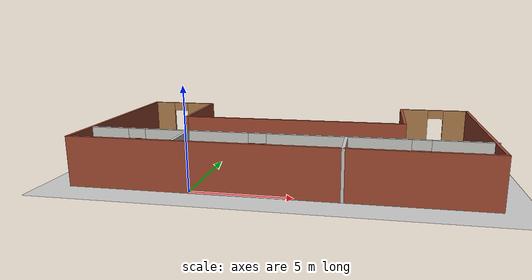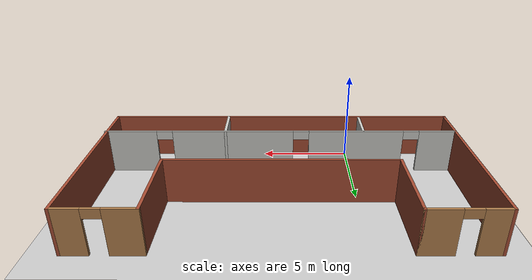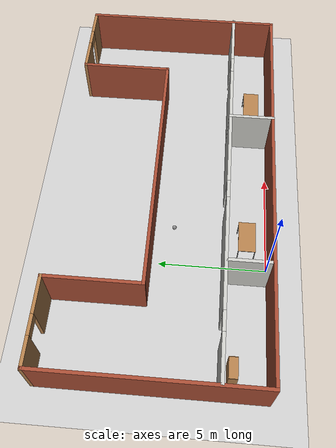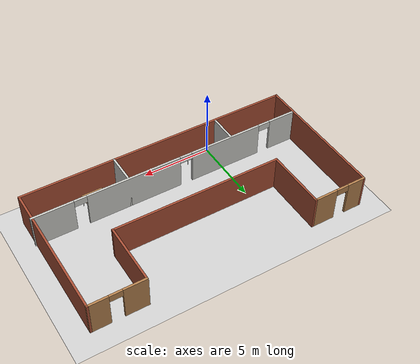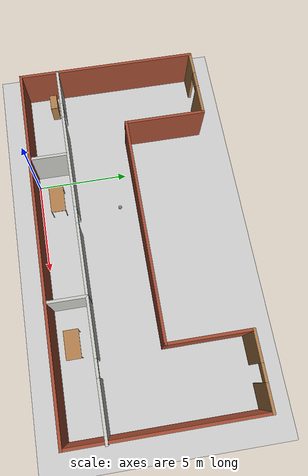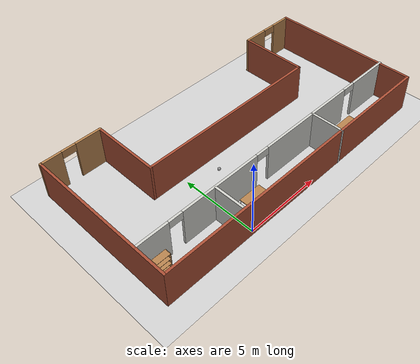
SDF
<sdf version="1.6">
 <world name="default">
  <light name="sun" type="directional">
   <pose>0 0 10 0 -0 0</pose>
   <diffuse>0.8 0.8 0.8 1</diffuse>
   <specular>0.2 0.2 0.2 1</specular>
   <attenuation>
    <range>1000</range>
    <constant>0.9</constant>
    <linear>0.01</linear>
    <quadratic>0.001</quadratic>
   </attenuation>
   <direction>-0.5 0.1 -0.9</direction>
  </light>
  <model name="ground_plane">
   <static>1</static>
   <link name="link">
    <collision name="collision">
     <geometry><plane><normal>0 0 1</normal><size>100 100</size></plane></geometry>
     <surface>
      <contact><collide_bitmask>65535</collide_bitmask></contact>
      <friction><ode><mu>100</mu><mu2>50</mu2></ode></friction>
     </surface>
    </collision>
    <visual name="visual">
     <cast_shadows>0</cast_shadows>
     <geometry><plane><normal>0 0 1</normal><size>100 100</size></plane></geometry>
     <material>
      <script><uri>file://media/materials/scripts/gazebo.material</uri><name>Gazebo/Grey</name></script>
     </material>
    </visual>
   </link>
  </model>
  <gravity>0 0 -9.8</gravity>
  <magnetic_field>6e-06 2.3e-05 -4.2e-05</magnetic_field>
  <atmosphere type="adiabatic"/>
  <physics name="default_physics" default="0" type="ode">
   <max_step_size>0.001</max_step_size>
   <real_time_factor>1</real_time_factor>
   <real_time_update_rate>1000</real_time_update_rate>
  </physics>
  <scene><ambient>0.4 0.4 0.4 1</ambient><background>0.7 0.7 0.7 1</background><shadows>1</shadows></scene>
  <spherical_coordinates>
   <surface_model>EARTH_WGS84</surface_model>
   <latitude_deg>0</latitude_deg>
   <longitude_deg>0</longitude_deg>
   <elevation>0</elevation>
   <heading_deg>0</heading_deg>
  </spherical_coordinates>
  <model name="House">
   <pose>4.04107 4.8221 0 0 -0 0</pose>
   <link name="Wall_1">
    <collision name="Wall_1_Collision">
     <geometry><box><size>10 0.15 2.5</size></box></geometry>
     <pose>0 0 1.25 0 -0 0</pose>
    </collision>
    <visual name="Wall_1_Visual">
     <pose>0 0 1.25 0 -0 0</pose>
     <geometry><box><size>10 0.15 2.5</size></box></geometry>
     <material>
      <script><uri>file://media/materials/scripts/gazebo.material</uri><name>Gazebo/Bricks</name></script>
      <ambient>1 1 1 1</ambient>
     </material>
     <meta><layer>0</layer></meta>
    </visual>
    <pose>-9.96485 0.006024 0 0 0 -1.5708</pose>
   </link>
   <link name="Wall_11">
    <pose>7.96015 4.93102 0 0 -0 3.14159</pose>
    <visual name="Wall_11_Visual_0">
     <pose>-1.28029 0 1.25 0 -0 0</pose>
     <geometry><box><size>1.43942 0.15 2.5</size></box></geometry>
     <material>
      <script><uri>file://media/materials/scripts/gazebo.material</uri><name>Gazebo/Wood</name></script>
      <ambient>1 1 1 1</ambient>
     </material>
     <meta><layer>0</layer></meta>
    </visual>
    <collision name="Wall_11_Collision_0">
     <geometry><box><size>1.43942 0.15 2.5</size></box></geometry>
     <pose>-1.28029 0 1.25 0 -0 0</pose>
    </collision>
    <visual name="Wall_11_Visual_1">
     <pose>1.16971 0 1.25 0 -0 0</pose>
     <geometry><box><size>1.66058 0.15 2.5</size></box></geometry>
     <material>
      <script><uri>file://media/materials/scripts/gazebo.material</uri><name>Gazebo/Wood</name></script>
      <ambient>1 1 1 1</ambient>
     </material>
     <meta><layer>0</layer></meta>
    </visual>
    <collision name="Wall_11_Collision_1">
     <geometry><box><size>1.66058 0.15 2.5</size></box></geometry>
     <pose>1.16971 0 1.25 0 -0 0</pose>
    </collision>
    <visual name="Wall_11_Visual_2">
     <pose>-0.110578 0 2.25 0 -0 0</pose>
     <geometry><box><size>0.9 0.15 0.5</size></box></geometry>
     <material>
      <script><uri>file://media/materials/scripts/gazebo.material</uri><name>Gazebo/Wood</name></script>
      <ambient>1 1 1 1</ambient>
     </material>
     <meta><layer>0</layer></meta>
    </visual>
    <collision name="Wall_11_Collision_2">
     <geometry><box><size>0.9 0.15 0.5</size></box></geometry>
     <pose>-0.110578 0 2.25 0 -0 0</pose>
    </collision>
   </link>
   <link name="Wall_12">
    <collision name="Wall_12_Collision">
     <geometry><box><size>4.5 0.15 2.5</size></box></geometry>
     <pose>0 0 1.25 0 -0 0</pose>
    </collision>
    <visual name="Wall_12_Visual">
     <pose>0 0 1.25 0 -0 0</pose>
     <geometry><box><size>4.5 0.15 2.5</size></box></geometry>
     <material>
      <script><uri>file://media/materials/scripts/gazebo.material</uri><name>Gazebo/Bricks</name></script>
      <ambient>1 1 1 1</ambient>
     </material>
     <meta><layer>0</layer></meta>
    </visual>
    <pose>6.03515 2.75602 0 0 0 -1.5708</pose>
   </link>
   <link name="Wall_13">
    <collision name="Wall_13_Collision">
     <geometry><box><size>12.3 0.15 2.5</size></box></geometry>
     <pose>0 0 1.25 0 -0 0</pose>
    </collision>
    <visual name="Wall_13_Visual">
     <pose>0 0 1.25 0 -0 0</pose>
     <geometry><box><size>12.3 0.15 2.5</size></box></geometry>
     <material>
      <script><uri>file://media/materials/scripts/gazebo.material</uri><name>Gazebo/Bricks</name></script>
      <ambient>1 1 1 1</ambient>
     </material>
     <meta><layer>0</layer></meta>
    </visual>
    <pose>-0.039852 0.581023 0 0 -0 3.14159</pose>
   </link>
   <link name="Wall_16">
    <pose>0.039852 -2.83102 0 0 -0 0</pose>
    <visual name="Wall_16_Visual_0">
     <pose>-8.96424 0 1.25 0 -0 0</pose>
     <geometry><box><size>2.07152 0.15 2.5</size></box></geometry>
     <material>
      <script><uri>file://media/materials/scripts/gazebo.material</uri><name>Gazebo/CeilingTiled</name></script>
      <ambient>1 1 1 1</ambient>
     </material>
     <meta><layer>0</layer></meta>
    </visual>
    <collision name="Wall_16_Collision_0">
     <geometry><box><size>2.07152 0.15 2.5</size></box></geometry>
     <pose>-8.96424 0 1.25 0 -0 0</pose>
    </collision>
    <visual name="Wall_16_Visual_1">
     <pose>-4.34023 0 1.25 0 -0 0</pose>
     <geometry><box><size>5.37651 0.15 2.5</size></box></geometry>
     <material>
      <script><uri>file://media/materials/scripts/gazebo.material</uri><name>Gazebo/CeilingTiled</name></script>
      <ambient>1 1 1 1</ambient>
     </material>
     <meta><layer>0</layer></meta>
    </visual>
    <collision name="Wall_16_Collision_1">
     <geometry><box><size>5.37651 0.15 2.5</size></box></geometry>
     <pose>-4.34023 0 1.25 0 -0 0</pose>
    </collision>
    <visual name="Wall_16_Visual_2">
     <pose>2.68674 0 1.25 0 -0 0</pose>
     <geometry><box><size>6.87742 0.15 2.5</size></box></geometry>
     <material>
      <script><uri>file://media/materials/scripts/gazebo.material</uri><name>Gazebo/CeilingTiled</name></script>
      <ambient>1 1 1 1</ambient>
     </material>
     <meta><layer>0</layer></meta>
    </visual>
    <collision name="Wall_16_Collision_2">
     <geometry><box><size>6.87742 0.15 2.5</size></box></geometry>
     <pose>2.68674 0 1.25 0 -0 0</pose>
    </collision>
    <visual name="Wall_16_Visual_3">
     <pose>8.51273 0 1.25 0 -0 0</pose>
     <geometry><box><size>2.97455 0.15 2.5</size></box></geometry>
     <material>
      <script><uri>file://media/materials/scripts/gazebo.material</uri><name>Gazebo/CeilingTiled</name></script>
      <ambient>1 1 1 1</ambient>
     </material>
     <meta><layer>0</layer></meta>
    </visual>
    <collision name="Wall_16_Collision_3">
     <geometry><box><size>2.97455 0.15 2.5</size></box></geometry>
     <pose>8.51273 0 1.25 0 -0 0</pose>
    </collision>
    <visual name="Wall_16_Visual_4">
     <pose>-7.47848 0 2.25 0 -0 0</pose>
     <geometry><box><size>0.9 0.15 0.5</size></box></geometry>
     <material>
      <script><uri>file://media/materials/scripts/gazebo.material</uri><name>Gazebo/CeilingTiled</name></script>
      <ambient>1 1 1 1</ambient>
     </material>
     <meta><layer>0</layer></meta>
    </visual>
    <collision name="Wall_16_Collision_4">
     <geometry><box><size>0.9 0.15 0.5</size></box></geometry>
     <pose>-7.47848 0 2.25 0 -0 0</pose>
    </collision>
    <visual name="Wall_16_Visual_5">
     <pose>-1.20197 0 2.25 0 -0 0</pose>
     <geometry><box><size>0.9 0.15 0.5</size></box></geometry>
     <material>
      <script><uri>file://media/materials/scripts/gazebo.material</uri><name>Gazebo/CeilingTiled</name></script>
      <ambient>1 1 1 1</ambient>
     </material>
     <meta><layer>0</layer></meta>
    </visual>
    <collision name="Wall_16_Collision_5">
     <geometry><box><size>0.9 0.15 0.5</size></box></geometry>
     <pose>-1.20197 0 2.25 0 -0 0</pose>
    </collision>
    <visual name="Wall_16_Visual_6">
     <pose>6.57545 0 2.25 0 -0 0</pose>
     <geometry><box><size>0.9 0.15 0.5</size></box></geometry>
     <material>
      <script><uri>file://media/materials/scripts/gazebo.material</uri><name>Gazebo/CeilingTiled</name></script>
      <ambient>1 1 1 1</ambient>
     </material>
     <meta><layer>0</layer></meta>
    </visual>
    <collision name="Wall_16_Collision_6">
     <geometry><box><size>0.9 0.15 0.5</size></box></geometry>
     <pose>6.57545 0 2.25 0 -0 0</pose>
    </collision>
   </link>
   <link name="Wall_20">
    <collision name="Wall_20_Collision">
     <geometry><box><size>2.25 0.15 2.5</size></box></geometry>
     <pose>0 0 1.25 0 -0 0</pose>
    </collision>
    <visual name="Wall_20_Visual">
     <pose>0 0 1.25 0 -0 0</pose>
     <geometry><box><size>2.25 0.15 2.5</size></box></geometry>
     <material>
      <script><uri>file://media/materials/scripts/gazebo.material</uri><name>Gazebo/CeilingTiled</name></script>
      <ambient>1 1 1 1</ambient>
     </material>
     <meta><layer>0</layer></meta>
    </visual>
    <pose>3.14544 -3.88102 0 0 0 -1.5708</pose>
   </link>
   <link name="Wall_25">
    <collision name="Wall_25_Collision">
     <geometry><box><size>2 0.15 2.5</size></box></geometry>
     <pose>0 0 1.25 0 -0 0</pose>
    </collision>
    <visual name="Wall_25_Visual">
     <pose>0 0 1.25 0 -0 0</pose>
     <geometry><box><size>2 0.15 2.5</size></box></geometry>
     <material>
      <script><uri>file://media/materials/scripts/gazebo.material</uri><name>Gazebo/CeilingTiled</name></script>
      <ambient>1 1 1 1</ambient>
     </material>
     <meta><layer>0</layer></meta>
    </visual>
    <pose>-4.72837 -3.8352 0 0 0 -1.5708</pose>
   </link>
   <link name="Wall_4">
    <collision name="Wall_4_Collision">
     <geometry><box><size>20 0.15 2.5</size></box></geometry>
     <pose>0 0 1.25 0 -0 0</pose>
    </collision>
    <visual name="Wall_4_Visual">
     <pose>0 0 1.25 0 -0 0</pose>
     <geometry><box><size>20 0.15 2.5</size></box></geometry>
     <material>
      <script><uri>file://media/materials/scripts/gazebo.material</uri><name>Gazebo/Bricks</name></script>
      <ambient>1 1 1 1</ambient>
     </material>
     <meta><layer>0</layer></meta>
    </visual>
    <pose>-0.039852 -4.91898 0 0 -0 0</pose>
   </link>
   <link name="Wall_6">
    <collision name="Wall_6_Collision">
     <geometry><box><size>10 0.15 2.5</size></box></geometry>
     <pose>0 0 1.25 0 -0 0</pose>
    </collision>
    <visual name="Wall_6_Visual">
     <pose>0 0 1.25 0 -0 0</pose>
     <geometry><box><size>10 0.15 2.5</size></box></geometry>
     <material>
      <script><uri>file://media/materials/scripts/gazebo.material</uri><name>Gazebo/Bricks</name></script>
      <ambient>1 1 1 1</ambient>
     </material>
     <meta><layer>0</layer></meta>
    </visual>
    <pose>9.88515 0.006024 0 0 -0 1.5708</pose>
   </link>
   <link name="Wall_8">
    <pose>-8.03985 4.93102 0 0 -0 0</pose>
    <visual name="Wall_8_Visual_0">
     <pose>-1.32236 0 1.25 0 -0 0</pose>
     <geometry><box><size>1.35529 0.15 2.5</size></box></geometry>
     <material>
      <script><uri>file://media/materials/scripts/gazebo.material</uri><name>Gazebo/Wood</name></script>
      <ambient>1 1 1 1</ambient>
     </material>
     <meta><layer>0</layer></meta>
    </visual>
    <collision name="Wall_8_Collision_0">
     <geometry><box><size>1.35529 0.15 2.5</size></box></geometry>
     <pose>-1.32236 0 1.25 0 -0 0</pose>
    </collision>
    <visual name="Wall_8_Visual_1">
     <pose>1.12764 0 1.25 0 -0 0</pose>
     <geometry><box><size>1.74471 0.15 2.5</size></box></geometry>
     <material>
      <script><uri>file://media/materials/scripts/gazebo.material</uri><name>Gazebo/Wood</name></script>
      <ambient>1 1 1 1</ambient>
     </material>
     <meta><layer>0</layer></meta>
    </visual>
    <collision name="Wall_8_Collision_1">
     <geometry><box><size>1.74471 0.15 2.5</size></box></geometry>
     <pose>1.12764 0 1.25 0 -0 0</pose>
    </collision>
    <visual name="Wall_8_Visual_2">
     <pose>-0.194714 0 2.25 0 -0 0</pose>
     <geometry><box><size>0.9 0.15 0.5</size></box></geometry>
     <material>
      <script><uri>file://media/materials/scripts/gazebo.material</uri><name>Gazebo/Wood</name></script>
      <ambient>1 1 1 1</ambient>
     </material>
     <meta><layer>0</layer></meta>
    </visual>
    <collision name="Wall_8_Collision_2">
     <geometry><box><size>0.9 0.15 0.5</size></box></geometry>
     <pose>-0.194714 0 2.25 0 -0 0</pose>
    </collision>
   </link>
   <link name="Wall_9">
    <collision name="Wall_9_Collision">
     <geometry><box><size>4.5 0.15 2.5</size></box></geometry>
     <pose>0 0 1.25 0 -0 0</pose>
    </collision>
    <visual name="Wall_9_Visual">
     <pose>0 0 1.25 0 -0 0</pose>
     <geometry><box><size>4.5 0.15 2.5</size></box></geometry>
     <material>
      <script><uri>file://media/materials/scripts/gazebo.material</uri><name>Gazebo/Bricks</name></script>
      <ambient>1 1 1 1</ambient>
     </material>
     <meta><layer>0</layer></meta>
    </visual>
    <pose>-6.11485 2.75602 0 0 0 -1.5708</pose>
   </link>
   <static>1</static>
  </model>
  <model name="bookshelf">
   <static>1</static>
   <link name="link">
    <inertial><mass>1</mass></inertial>
    <collision name="back">
     <pose>0 0.005 0.6 0 -0 0</pose>
     <geometry><box><size>0.9 0.01 1.2</size></box></geometry>
    </collision>
    <visual name="visual1">
     <pose>0 0.005 0.6 0 -0 0</pose>
     <geometry><box><size>0.9 0.01 1.2</size></box></geometry>
     <material>
      <script><uri>file://media/materials/scripts/gazebo.material</uri><name>Gazebo/Wood</name></script>
     </material>
    </visual>
    <collision name="left_side">
     <pose>0.45 -0.195 0.6 0 -0 0</pose>
     <geometry><box><size>0.02 0.4 1.2</size></box></geometry>
    </collision>
    <visual name="visual2">
     <pose>0.45 -0.195 0.6 0 -0 0</pose>
     <geometry><box><size>0.02 0.4 1.2</size></box></geometry>
     <material>
      <script><uri>file://media/materials/scripts/gazebo.material</uri><name>Gazebo/Wood</name></script>
     </material>
    </visual>
    <collision name="right_side">
     <pose>-0.45 -0.195 0.6 0 -0 0</pose>
     <geometry><box><size>0.02 0.4 1.2</size></box></geometry>
    </collision>
    <visual name="visual3">
     <pose>-0.45 -0.195 0.6 0 -0 0</pose>
     <geometry><box><size>0.02 0.4 1.2</size></box></geometry>
     <material>
      <script><uri>file://media/materials/scripts/gazebo.material</uri><name>Gazebo/Wood</name></script>
     </material>
    </visual>
    <collision name="bottom">
     <pose>0 -0.195 0.03 0 -0 0</pose>
     <geometry><box><size>0.88 0.4 0.06</size></box></geometry>
    </collision>
    <visual name="visual4">
     <pose>0 -0.195 0.03 0 -0 0</pose>
     <geometry><box><size>0.88 0.4 0.06</size></box></geometry>
     <material>
      <script><uri>file://media/materials/scripts/gazebo.material</uri><name>Gazebo/Wood</name></script>
     </material>
    </visual>
    <collision name="top">
     <pose>0 -0.195 1.19 0 -0 0</pose>
     <geometry><box><size>0.88 0.4 0.02</size></box></geometry>
    </collision>
    <visual name="visual5">
     <pose>0 -0.195 1.19 0 -0 0</pose>
     <geometry><box><size>0.88 0.4 0.02</size></box></geometry>
     <material>
      <script><uri>file://media/materials/scripts/gazebo.material</uri><name>Gazebo/Wood</name></script>
     </material>
    </visual>
    <collision name="low_shelf">
     <pose>0 -0.195 0.43 0 -0 0</pose>
     <geometry><box><size>0.88 0.4 0.02</size></box></geometry>
    </collision>
    <visual name="visual6">
     <pose>0 -0.195 0.43 0 -0 0</pose>
     <geometry><box><size>0.88 0.4 0.02</size></box></geometry>
     <material>
      <script><uri>file://media/materials/scripts/gazebo.material</uri><name>Gazebo/Wood</name></script>
     </material>
    </visual>
    <collision name="high_shelf">
     <pose>0 -0.195 0.8 0 -0 0</pose>
     <geometry><box><size>0.88 0.4 0.02</size></box></geometry>
    </collision>
    <visual name="visual7">
     <pose>0 -0.195 0.8 0 -0 0</pose>
     <geometry><box><size>0.88 0.4 0.02</size></box></geometry>
     <material>
      <script><uri>file://media/materials/scripts/gazebo.material</uri><name>Gazebo/Wood</name></script>
     </material>
    </visual>
   </link>
   <pose>-4.87645 1.67076 0 0 -0 0</pose>
  </model>
  <model name="table">
   <static>1</static>
   <link name="link">
    <collision name="surface">
     <pose>0 0 1 0 -0 0</pose>
     <geometry><box><size>1.5 0.8 0.03</size></box></geometry>
     <surface><friction><ode><mu>0.6</mu><mu2>0.6</mu2></ode></friction></surface>
    </collision>
    <visual name="visual1">
     <pose>0 0 1 0 -0 0</pose>
     <geometry><box><size>1.5 0.8 0.03</size></box></geometry>
     <material>
      <script><uri>file://media/materials/scripts/gazebo.material</uri><name>Gazebo/Wood</name></script>
     </material>
    </visual>
    <collision name="front_left_leg">
     <pose>0.68 0.38 0.5 0 -0 0</pose>
     <geometry><cylinder><radius>0.02</radius><length>1</length></cylinder></geometry>
    </collision>
    <visual name="front_left_leg">
     <pose>0.68 0.38 0.5 0 -0 0</pose>
     <geometry><cylinder><radius>0.02</radius><length>1</length></cylinder></geometry>
     <material>
      <script><uri>file://media/materials/scripts/gazebo.material</uri><name>Gazebo/Grey</name></script>
     </material>
    </visual>
    <collision name="front_right_leg">
     <pose>0.68 -0.38 0.5 0 -0 0</pose>
     <geometry><cylinder><radius>0.02</radius><length>1</length></cylinder></geometry>
    </collision>
    <visual name="front_right_leg">
     <pose>0.68 -0.38 0.5 0 -0 0</pose>
     <geometry><cylinder><radius>0.02</radius><length>1</length></cylinder></geometry>
     <material>
      <script><uri>file://media/materials/scripts/gazebo.material</uri><name>Gazebo/Grey</name></script>
     </material>
    </visual>
    <collision name="back_right_leg">
     <pose>-0.68 -0.38 0.5 0 -0 0</pose>
     <geometry><cylinder><radius>0.02</radius><length>1</length></cylinder></geometry>
    </collision>
    <visual name="back_right_leg">
     <pose>-0.68 -0.38 0.5 0 -0 0</pose>
     <geometry><cylinder><radius>0.02</radius><length>1</length></cylinder></geometry>
     <material>
      <script><uri>file://media/materials/scripts/gazebo.material</uri><name>Gazebo/Grey</name></script>
     </material>
    </visual>
    <collision name="back_left_leg">
     <pose>-0.68 0.38 0.5 0 -0 0</pose>
     <geometry><cylinder><radius>0.02</radius><length>1</length></cylinder></geometry>
    </collision>
    <visual name="back_left_leg">
     <pose>-0.68 0.38 0.5 0 -0 0</pose>
     <geometry><cylinder><radius>0.02</radius><length>1</length></cylinder></geometry>
     <material>
      <script><uri>file://media/materials/scripts/gazebo.material</uri><name>Gazebo/Grey</name></script>
     </material>
    </visual>
   </link>
   <pose>1.21974 0.964337 0 0 -0 0</pose>
  </model>
  <model name="table_0">
   <static>1</static>
   <link name="link">
    <collision name="surface">
     <pose>0 0 1 0 -0 0</pose>
     <geometry><box><size>1.5 0.8 0.03</size></box></geometry>
     <surface><friction><ode><mu>0.6</mu><mu2>0.6</mu2></ode></friction></surface>
    </collision>
    <visual name="visual1">
     <pose>0 0 1 0 -0 0</pose>
     <geometry><box><size>1.5 0.8 0.03</size></box></geometry>
     <material>
      <script><uri>file://media/materials/scripts/gazebo.material</uri><name>Gazebo/Wood</name></script>
     </material>
    </visual>
    <collision name="front_left_leg">
     <pose>0.68 0.38 0.5 0 -0 0</pose>
     <geometry><cylinder><radius>0.02</radius><length>1</length></cylinder></geometry>
    </collision>
    <visual name="front_left_leg">
     <pose>0.68 0.38 0.5 0 -0 0</pose>
     <geometry><cylinder><radius>0.02</radius><length>1</length></cylinder></geometry>
     <material>
      <script><uri>file://media/materials/scripts/gazebo.material</uri><name>Gazebo/Grey</name></script>
     </material>
    </visual>
    <collision name="front_right_leg">
     <pose>0.68 -0.38 0.5 0 -0 0</pose>
     <geometry><cylinder><radius>0.02</radius><length>1</length></cylinder></geometry>
    </collision>
    <visual name="front_right_leg">
     <pose>0.68 -0.38 0.5 0 -0 0</pose>
     <geometry><cylinder><radius>0.02</radius><length>1</length></cylinder></geometry>
     <material>
      <script><uri>file://media/materials/scripts/gazebo.material</uri><name>Gazebo/Grey</name></script>
     </material>
    </visual>
    <collision name="back_right_leg">
     <pose>-0.68 -0.38 0.5 0 -0 0</pose>
     <geometry><cylinder><radius>0.02</radius><length>1</length></cylinder></geometry>
    </collision>
    <visual name="back_right_leg">
     <pose>-0.68 -0.38 0.5 0 -0 0</pose>
     <geometry><cylinder><radius>0.02</radius><length>1</length></cylinder></geometry>
     <material>
      <script><uri>file://media/materials/scripts/gazebo.material</uri><name>Gazebo/Grey</name></script>
     </material>
    </visual>
    <collision name="back_left_leg">
     <pose>-0.68 0.38 0.5 0 -0 0</pose>
     <geometry><cylinder><radius>0.02</radius><length>1</length></cylinder></geometry>
    </collision>
    <visual name="back_left_leg">
     <pose>-0.68 0.38 0.5 0 -0 0</pose>
     <geometry><cylinder><radius>0.02</radius><length>1</length></cylinder></geometry>
     <material>
      <script><uri>file://media/materials/scripts/gazebo.material</uri><name>Gazebo/Grey</name></script>
     </material>
    </visual>
   </link>
   <pose>9.23977 0.83271 0 0 -0 0</pose>
  </model>
  <model name="my_ball">
   <link name="link_1">
    <inertial>
     <mass>1</mass>
     <inertia><ixx>0.1</ixx><ixy>0</ixy><ixz>0</ixz><iyy>0.1</iyy><iyz>0</iyz><izz>0.1</izz></inertia>
    </inertial>
    <visual name="visual">
     <geometry><sphere><radius>0.1</radius></sphere></geometry>
     <material>
      <lighting>1</lighting>
      <script><uri>file://media/materials/scripts/gazebo.material</uri><name>Gazebo/Grey</name></script>
      <shader type="pixel"><normal_map>__default__</normal_map></shader>
      <ambient>1 1 1 1</ambient>
      <diffuse>1 1 1 1</diffuse>
      <specular>1 1 1 1</specular>
      <emissive>1 1 1 1</emissive>
     </material>
    </visual>
    <collision name="collision">
     <geometry><sphere><radius>0.1</radius></sphere></geometry>
     <surface>
      <friction>
       <ode><mu>1</mu><mu2>1</mu2><fdir1>0 0 0</fdir1><slip1>0</slip1><slip2>0</slip2></ode>
       <torsional>
        <coefficient>1</coefficient>
        <patch_radius>0</patch_radius>
        <surface_radius>0</surface_radius>
        <use_patch_radius>1</use_patch_radius>
        <ode><slip>0</slip></ode>
       </torsional>
      </friction>
      <bounce><restitution_coefficient>0</restitution_coefficient><threshold>1e+06</threshold></bounce>
      <contact>
       <collide_without_contact>0</collide_without_contact>
       <collide_without_contact_bitmask>1</collide_without_contact_bitmask>
       <collide_bitmask>1</collide_bitmask>
       <ode>
        <soft_cfm>0</soft_cfm>
        <soft_erp>0.2</soft_erp>
        <kp>1e+13</kp>
        <kd>1</kd>
        <max_vel>0.01</max_vel>
        <min_depth>0</min_depth>
       </ode>
       <bullet>
        <split_impulse>1</split_impulse>
        <split_impulse_penetration_threshold>-0.01</split_impulse_penetration_threshold>
        <soft_cfm>0</soft_cfm>
        <soft_erp>0.2</soft_erp>
        <kp>1e+13</kp>
        <kd>1</kd>
       </bullet>
      </contact>
     </surface>
    </collision>
   </link>
   <static>0</static>
   <pose>1.93281 4.39221 0.1 0 -0 0</pose>
  </model>
 </world>
</sdf>
